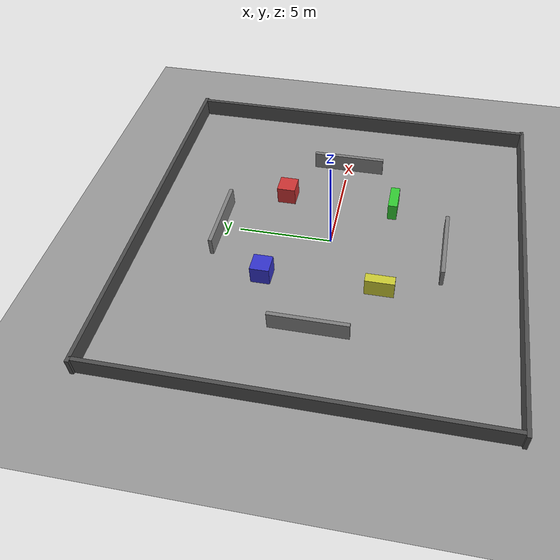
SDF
<?xml version="1.0" ?>
<sdf version="1.9">
  <world name="nav2_test_world">

    <physics name="1ms" type="ignored">
      <max_step_size>0.001</max_step_size>
      <real_time_factor>1.0</real_time_factor>
    </physics>

    <plugin filename="gz-sim-physics-system" name="gz::sim::systems::Physics"/>
    <plugin filename="gz-sim-user-commands-system" name="gz::sim::systems::UserCommands"/>
    <plugin filename="gz-sim-scene-broadcaster-system" name="gz::sim::systems::SceneBroadcaster"/>
    <plugin filename="gz-sim-sensors-system" name="gz::sim::systems::Sensors">
      <render_engine>ogre2</render_engine>
    </plugin>
    <plugin filename="gz-sim-contact-system" name="gz::sim::systems::Contact"/>

    <light type="directional" name="sun">
      <cast_shadows>true</cast_shadows>
      <pose>0 0 10 0 0 0</pose>
      <diffuse>0.8 0.8 0.8 1</diffuse>
      <specular>0.2 0.2 0.2 1</specular>
      <attenuation>
        <range>1000</range>
        <constant>0.9</constant>
        <linear>0.01</linear>
        <quadratic>0.001</quadratic>
      </attenuation>
      <direction>-0.5 0.1 -0.9</direction>
    </light>

    <!-- Ground plane 20m x 20m, map extents -10..+10 -->
    <model name="ground_plane">
      <static>true</static>
      <link name="link">
        <collision name="collision">
          <geometry>
            <plane>
              <normal>0 0 1</normal>
              <size>20 20</size>
            </plane>
          </geometry>
        </collision>
        <visual name="visual">
          <geometry>
            <plane>
              <normal>0 0 1</normal>
              <size>20 20</size>
            </plane>
          </geometry>
          <material>
            <ambient>0.6 0.6 0.6 1</ambient>
            <diffuse>0.6 0.6 0.6 1</diffuse>
          </material>
        </visual>
      </link>
    </model>

    <!-- Boundary walls: 20m arena, 0.2m thick, 1m tall -->
    <!-- North wall: y = +10 -->
    <model name="wall_north">
      <static>true</static>
      <pose>0.0 10.0 0.5 0 0 0</pose>
      <link name="link">
        <collision name="collision">
          <geometry><box><size>20.4 0.2 1.0</size></box></geometry>
        </collision>
        <visual name="visual">
          <geometry><box><size>20.4 0.2 1.0</size></box></geometry>
          <material>
            <ambient>0.3 0.3 0.3 1</ambient>
            <diffuse>0.3 0.3 0.3 1</diffuse>
          </material>
        </visual>
      </link>
    </model>

    <!-- South wall: y = -10 -->
    <model name="wall_south">
      <static>true</static>
      <pose>0.0 -10.0 0.5 0 0 0</pose>
      <link name="link">
        <collision name="collision">
          <geometry><box><size>20.4 0.2 1.0</size></box></geometry>
        </collision>
        <visual name="visual">
          <geometry><box><size>20.4 0.2 1.0</size></box></geometry>
          <material>
            <ambient>0.3 0.3 0.3 1</ambient>
            <diffuse>0.3 0.3 0.3 1</diffuse>
          </material>
        </visual>
      </link>
    </model>

    <!-- East wall: x = +10 -->
    <model name="wall_east">
      <static>true</static>
      <pose>10.0 0.0 0.5 0 0 0</pose>
      <link name="link">
        <collision name="collision">
          <geometry><box><size>0.2 20.0 1.0</size></box></geometry>
        </collision>
        <visual name="visual">
          <geometry><box><size>0.2 20.0 1.0</size></box></geometry>
          <material>
            <ambient>0.3 0.3 0.3 1</ambient>
            <diffuse>0.3 0.3 0.3 1</diffuse>
          </material>
        </visual>
      </link>
    </model>

    <!-- West wall: x = -10 -->
    <model name="wall_west">
      <static>true</static>
      <pose>-10.0 0.0 0.5 0 0 0</pose>
      <link name="link">
        <collision name="collision">
          <geometry><box><size>0.2 20.0 1.0</size></box></geometry>
        </collision>
        <visual name="visual">
          <geometry><box><size>0.2 20.0 1.0</size></box></geometry>
          <material>
            <ambient>0.3 0.3 0.3 1</ambient>
            <diffuse>0.3 0.3 0.3 1</diffuse>
          </material>
        </visual>
      </link>
    </model>

    <model name="box1">
      <static>true</static>
      <pose>3.0 3.0 0.5 0 0 0</pose>
      <link name="link">
        <collision name="collision">
          <geometry><box><size>1.0 1.0 1.0</size></box></geometry>
        </collision>
        <visual name="visual">
          <geometry><box><size>1.0 1.0 1.0</size></box></geometry>
          <material>
            <ambient>0.8 0.2 0.2 1</ambient>
            <diffuse>0.8 0.2 0.2 1</diffuse>
          </material>
        </visual>
      </link>
    </model>

    <model name="box2">
      <static>true</static>
      <pose>-3.0 3.0 0.5 0 0 0</pose>
      <link name="link">
        <collision name="collision">
          <geometry><box><size>1.0 1.0 1.0</size></box></geometry>
        </collision>
        <visual name="visual">
          <geometry><box><size>1.0 1.0 1.0</size></box></geometry>
          <material>
            <ambient>0.2 0.2 0.8 1</ambient>
            <diffuse>0.2 0.2 0.8 1</diffuse>
          </material>
        </visual>
      </link>
    </model>

    <model name="box3">
      <static>true</static>
      <pose>3.0 -3.0 0.5 0 0 0</pose>
      <link name="link">
        <collision name="collision">
          <geometry><box><size>1.5 0.5 1.0</size></box></geometry>
        </collision>
        <visual name="visual">
          <geometry><box><size>1.5 0.5 1.0</size></box></geometry>
          <material>
            <ambient>0.2 0.8 0.2 1</ambient>
            <diffuse>0.2 0.8 0.2 1</diffuse>
          </material>
        </visual>
      </link>
    </model>

    <model name="box4">
      <static>true</static>
      <pose>-3.0 -3.0 0.5 0 0 0</pose>
      <link name="link">
        <collision name="collision">
          <geometry><box><size>0.5 1.5 1.0</size></box></geometry>
        </collision>
        <visual name="visual">
          <geometry><box><size>0.5 1.5 1.0</size></box></geometry>
          <material>
            <ambient>0.8 0.8 0.2 1</ambient>
            <diffuse>0.8 0.8 0.2 1</diffuse>
          </material>
        </visual>
      </link>
    </model>

    <model name="wall_inner1">
      <static>true</static>
      <pose>0.0 6.0 0.5 0 0 0</pose>
      <link name="link">
        <collision name="collision">
          <geometry><box><size>4.0 0.2 1.0</size></box></geometry>
        </collision>
        <visual name="visual">
          <geometry><box><size>4.0 0.2 1.0</size></box></geometry>
          <material>
            <ambient>0.5 0.5 0.5 1</ambient>
            <diffuse>0.5 0.5 0.5 1</diffuse>
          </material>
        </visual>
      </link>
    </model>

    <model name="wall_inner2">
      <static>true</static>
      <pose>0.0 -6.0 0.5 0 0 0</pose>
      <link name="link">
        <collision name="collision">
          <geometry><box><size>4.0 0.2 1.0</size></box></geometry>
        </collision>
        <visual name="visual">
          <geometry><box><size>4.0 0.2 1.0</size></box></geometry>
          <material>
            <ambient>0.5 0.5 0.5 1</ambient>
            <diffuse>0.5 0.5 0.5 1</diffuse>
          </material>
        </visual>
      </link>
    </model>

    <model name="wall_inner3">
      <static>true</static>
      <pose>6.0 0.0 0.5 0 0 0</pose>
      <link name="link">
        <collision name="collision">
          <geometry><box><size>0.2 4.0 1.0</size></box></geometry>
        </collision>
        <visual name="visual">
          <geometry><box><size>0.2 4.0 1.0</size></box></geometry>
          <material>
            <ambient>0.5 0.5 0.5 1</ambient>
            <diffuse>0.5 0.5 0.5 1</diffuse>
          </material>
        </visual>
      </link>
    </model>

    <model name="wall_inner4">
      <static>true</static>
      <pose>-6.0 0.0 0.5 0 0 0</pose>
      <link name="link">
        <collision name="collision">
          <geometry><box><size>0.2 4.0 1.0</size></box></geometry>
        </collision>
        <visual name="visual">
          <geometry><box><size>0.2 4.0 1.0</size></box></geometry>
          <material>
            <ambient>0.5 0.5 0.5 1</ambient>
            <diffuse>0.5 0.5 0.5 1</diffuse>
          </material>
        </visual>
      </link>
    </model>

  </world>
</sdf>
